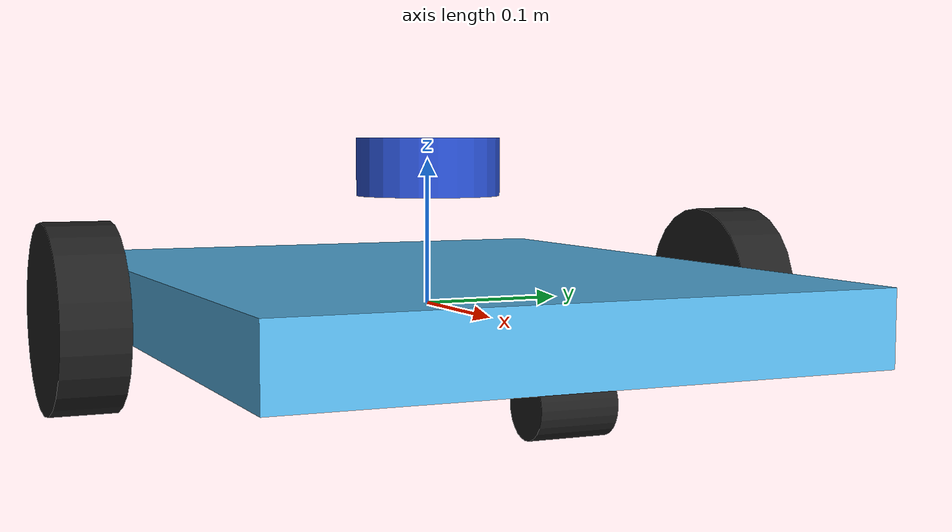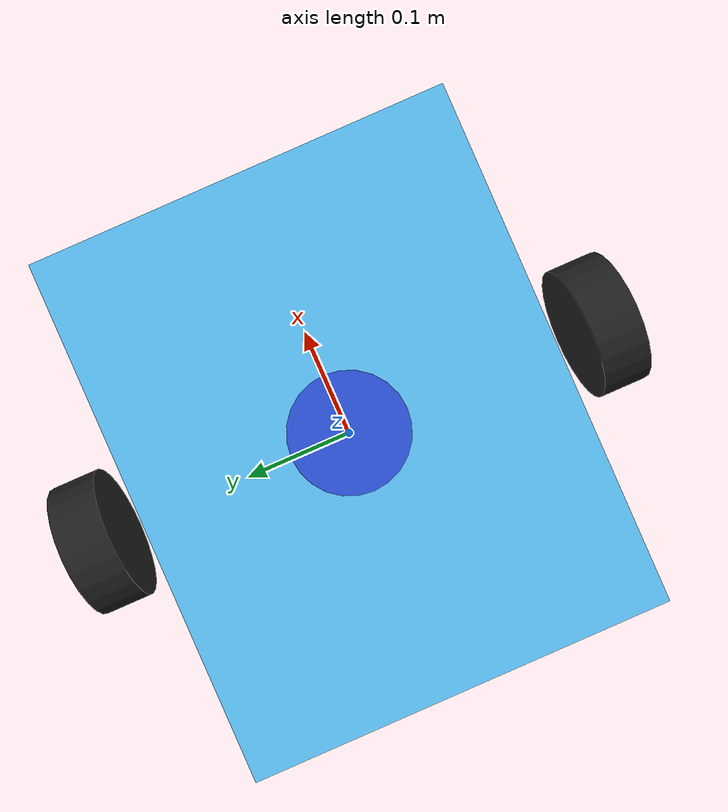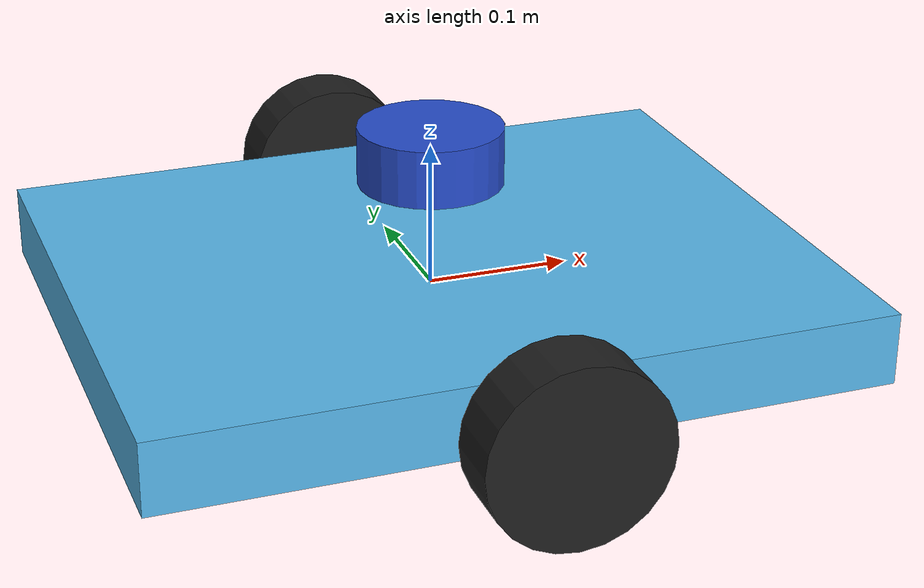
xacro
<?xml version="1.0" ?>

<robot name="simplem" xmlns:xacro="http://ros.org/wiki/xacro">

  <!-- BGN - Include -->
  <xacro:include filename="$(find simplem_description)/urdf/links_joints.xacro" />
  <xacro:include filename="$(find simplem_description)/urdf/gazebo.xacro" />
  <!-- END - Include -->

  <material name="white">
    <color rgba="1 1 1 1"/>
  </material>

  <material name="black">
    <color rgba="0 0 0 1"/>
  </material>

  <material name="green">
    <color rgba="0.1 0.8 0.1 1"/>
  </material>

  <xacro:property name="clongi" value="0.5" />
  <xacro:property name="clater" value="0.4" />
  <xacro:property name="cheight" value="0.050" />

  <xacro:property name="wradius" value="0.062" />
  <xacro:property name="wlength" value="0.044" />

  <xacro:property name="caradi" value="0.02" />
  <xacro:property name="caleng" value="0.05" />

  <!-- BGN - Robot description -->

  <link name="base_link" />

  <joint name="base__base_link" type="fixed">
    <parent link="base_link"/>
    <child link="base"/>
  </joint>

  <link name="base">
    <origin rpy="0 0 0" xyz="0.0 0.0 0.0"/>
    <visual>
      <geometry>
        <box size="${clongi} ${clater} ${cheight}"/>
      </geometry>
    </visual>
    <collision>
      <geometry>
        <box size="${clongi} ${clater} ${cheight}"/>
      </geometry>
    </collision>
    <inertial>
      <mass value="5.0" />
      <inertia ixx="2.0" ixy="0.0" ixz="0.0" iyy="2.0" iyz="0.0" izz="2.0" />
    </inertial>
  </link>

  <link name="fcastor_wheel">
    <origin rpy="0 0 0" xyz="0.0 0.0 0.0"/>
    <visual>
      <geometry>
        <cylinder length="${caleng}" radius="${caradi}"/>
      </geometry>
    </visual>
    <collision>
      <geometry>
        <cylinder length="${caleng}" radius="${caradi}"/>
      </geometry>
    </collision>
    <inertial>
      <mass value="0.05" />
      <inertia ixx="0.001" ixy="0.0" ixz="0.0" iyy="0.001" iyz="0.0" izz="0.001" />
    </inertial>
  </link>

  <link name="bcastor_wheel">
    <origin rpy="0 0 0" xyz="0.0 0.0 0.0"/>
    <visual>
      <geometry>
        <cylinder length="${caleng}" radius="${caradi}"/>
      </geometry>
    </visual>
    <collision>
      <geometry>
        <cylinder length="${caleng}" radius="${caradi}"/>
      </geometry>
    </collision>
    <inertial>
      <mass value="0.05" />
      <inertia ixx="0.001" ixy="0.0" ixz="0.0" iyy="0.001" iyz="0.0" izz="0.001" />
    </inertial>
  </link>

  <joint name="base__fcastor_wheel" type="continuous">
    <parent link="base"/>
    <child link="fcastor_wheel"/>
    <origin xyz="${clongi/2-0.05} 0 -0.04" rpy="1.5708 0 0"/>
    <axis xyz="0 0 1"/>
  </joint>

  <joint name="base__bcastor_wheel" type="continuous">
    <parent link="base"/>
    <child link="bcastor_wheel"/>
    <origin xyz="-${clongi/2-0.05} 0 -0.04" rpy="1.5708 0 0"/>
    <axis xyz="0 0 1"/>
  </joint>

  <link name="left_wheel">
    <origin rpy="0 0 0" xyz="0.00 0 0.00"/>
    <visual>
      <geometry>
        <cylinder length="${wlength}" radius="${wradius}"/>
      </geometry>
    </visual>
    <collision>
      <geometry>
        <cylinder length="${wlength}" radius="${wradius}"/>
      </geometry>
    </collision>
    <inertial>
      <mass value="0.2" />
      <inertia ixx="0.001" ixy="0.0" ixz="0.0" iyy="0.001" iyz="0.0" izz="0.001" />
    </inertial>
  </link>

  <joint name="wheel_left_joint" type="continuous">
    <parent link="base"/>
    <child link="left_wheel"/>
    <origin xyz="0 ${clater/2+wlength} 0.0" rpy="1.5708 0 0"/>
    <axis xyz="0 0 -1"/>
  </joint>

  <link name="right_wheel">
    <origin rpy="0 0 0" xyz="0.00 0 0.00"/>
    <visual>
      <geometry>
        <cylinder length="${wlength}" radius="${wradius}"/>
      </geometry>
    </visual>
    <collision>
      <geometry>
        <cylinder length="${wlength}" radius="${wradius}"/>
      </geometry>
    </collision>
    <inertial>
      <mass value="0.2" />
      <inertia ixx="0.001" ixy="0.0" ixz="0.0" iyy="0.001" iyz="0.0" izz="0.001" />
    </inertial>
  </link>

  <joint name="wheel_right_joint" type="continuous">
    <parent link="base"/>
    <child link="right_wheel"/>
    <origin xyz="0 -${clater/2+wlength} 0.0" rpy="1.5708 0 0"/>
    <axis xyz="0 0 -1"/>
  </joint>

  <!-- RPlaser Laser -->
  <link name="rplidar_link">
    <collision>
      <origin xyz="0 0 0" rpy="0 0 0"/>
      <geometry>
        <cylinder length="0.04" radius="0.05"/>
      </geometry>
    </collision>

    <visual>
      <origin xyz="0 0 0" rpy="0 0 0"/>
      <geometry>
	<cylinder length="0.04" radius="0.05"/>
      </geometry>
      <material name="blue"/>
    </visual>

    <inertial>
      <mass value="1e-5" />
      <origin xyz="0 0 0" rpy="0 0 0"/>
      <inertia ixx="1e-6" ixy="0" ixz="0" iyy="1e-6" iyz="0" izz="1e-6" />
    </inertial>
  </link>

  <joint name="rplaser_joint" type="fixed">
    <axis xyz="0 1 0" />
    <origin xyz="0.0 0.0 ${(cheight+0.04)/2+0.05}" rpy="0 0 0"/>
    <parent link="base_link"/>
    <child link="rplidar_link"/>
  </joint>

</robot>
